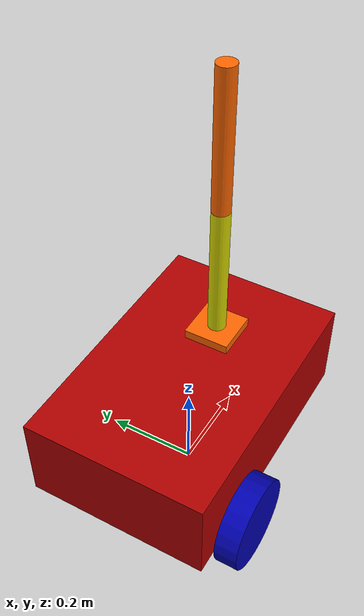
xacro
<?xml version="1.0"?>
<robot name="myBot" xmlns:xacro="http://www.ros.org/wiki/xacro" >
    <xacro:include filename="common_properties.xacro" />
    <xacro:include filename="mobile_base.xacro" />
    <xacro:include filename="camera.xacro" />
    <xacro:include filename="mobile_base_gazebo.xacro" />
    <xacro:include filename="robotic_arm.xacro" />
</robot>

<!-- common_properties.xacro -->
<robot xmlns:xacro="http://www.ros.org/wiki/xacro" >
    <material name="red">
        <color rgba="0.7 0 0 1" />
    </material>
    <material name="green">
        <color rgba="0 0.7 0 1" />
    </material>
    <material name="blue">
        <color rgba="0 0 0.7 1" />
    </material>
    <material name="orange">
        <color rgba="1 0.4 0 1" />
    </material>
    <material name="yellow">
        <color rgba="0.85 0.85 0 1" />
    </material>

    <xacro:macro name="box_inertia" params="l w h m xyz rpy" >
        <inertial>
            <origin xyz="${xyz}" rpy="${rpy}"/>
            <mass value="${m}" />
            <inertia ixx="${(m/12) * (h*h + l*l)}" ixy="0" ixz="0"
                     iyy="${(m/12) * (w*w + l*l)}" iyz="0"
                     izz="${(m/12) * (w*w + h*h)}" />
        </inertial>
    </xacro:macro>

    <xacro:macro name="cylinder_inertia" params="r l m xyz rpy" >
        <inertial>
            <origin xyz="${xyz}" rpy="${rpy}"/>
            <mass value="${m}" />
            <inertia ixx="${(m/12) * (3*r*r + l*l)}" ixy="0" ixz="0"
                     iyy="${(m/12) * (3*r*r + l*l)}" iyz="0"
                     izz="${(m/2) * (r*r)}" />
        </inertial>
    </xacro:macro>

    <xacro:macro name="sphere_inertia" params="r m xyz rpy" >
        <inertial>
            <origin xyz="${xyz}" rpy="${rpy}"/>
            <mass value="${m}" />
            <inertia ixx="${(2*m/5) * (r*r)}" ixy="0" ixz="0"
                     iyy="${(2*m/5) * (r*r)}" iyz="0"
                     izz="${(2*m/5) * (r*r)}" />
        </inertial>
    </xacro:macro>
</robot>

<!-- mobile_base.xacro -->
<robot xmlns:xacro="http://www.ros.org/wiki/xacro" >
    <xacro:property name="base_length" value="0.6" />
    <xacro:property name="base_width" value="0.4" />
    <xacro:property name="base_height" value="0.2" />
    <xacro:property name="wheel_radius" value="0.1" />
    <xacro:property name="wheel_length" value="0.05" />

    <link name="base_footprint" />
    <link name="base_link">
        <visual>
            <geometry>
                <box size="${base_length} ${base_width} ${base_height}" />
            </geometry>
            <origin xyz="0 0 ${base_height / 2}" rpy="0 0 0"/>
            <material name="red" />
        </visual>
        <collision>
            <geometry>
                <box size="${base_length} ${base_width} ${base_height}" />
            </geometry>
            <origin xyz="0 0 ${base_height / 2}" rpy="0 0 0"/>
        </collision>
        <xacro:box_inertia m="5.0" l="${2*base_length}" w="${2*base_width}" h="${2*base_height}"
                          xyz="0 0 ${base_height / 2}" rpy="0 0 0" />
    </link>

    <joint name="base_joint" type="fixed">
        <parent link="base_footprint" />
        <child link="base_link" />
        <origin xyz="0 0 ${wheel_radius}" rpy="0 0 0" />
        <axis xyz="1 0 0" />
    </joint>

    <xacro:macro name="wheel_link" params="prefix" >
        <link name="${prefix}_wheel_link">
            <visual>
                <geometry>
                    <cylinder radius="${wheel_radius}" length="${wheel_length}" />
                </geometry>
                <origin xyz="0 0 0" rpy="0 0 0"/>
                <material name="blue" />
            </visual>
            <collision>
                <geometry>
                    <cylinder radius="${wheel_radius}" length="${wheel_length}" />
                </geometry>
                <origin xyz="0 0 0" rpy="0 0 0"/>
            </collision>
            <xacro:cylinder_inertia m="1.0" l="${2*wheel_length}" r="${2*wheel_radius}"
                          xyz="0 0 0" rpy="0 0 0"/>
        </link>
    </xacro:macro>

    <xacro:wheel_link prefix="left" />
    <xacro:wheel_link prefix="right" />

    <joint name="base_left_wheel_joint" type="continuous">
        <parent link="base_link" />
        <child link="left_wheel_link" />
        <origin xyz="${-base_length / 4.0} ${base_width / 2 + wheel_radius / 4} 0" rpy="${pi / 2.0} 0 0"/>
        <axis xyz="0 0 1" />
    </joint>

    <joint name="base_right_wheel_joint" type="continuous">
        <parent link="base_link" />
        <child link="right_wheel_link" />
        <origin xyz="${-base_length / 4.0} ${-(base_width / 2 + wheel_radius / 4)} 0" rpy="${pi / 2.0} 0 0"/>
        <axis xyz="0 0 1" />
    </joint>

    <link name="castor_wheel_link">
        <visual>
            <geometry>
                <sphere radius="${wheel_radius / 2}" />
            </geometry>
            <origin xyz="0 0 0" rpy="0 0 0"/>
            <material name="blue" />
        </visual>
        <collision>
            <geometry>
                <sphere radius="${wheel_radius / 2}" />
            </geometry>
            <origin xyz="0 0 0" rpy="0 0 0"/>
        </collision>
        <xacro:sphere_inertia m="0.5" r="${wheel_radius / 2}" xyz="0 0 0" rpy="0 0 0"/>
    </link>

    <joint name="base_castor_wheel_joint" type="fixed">
        <parent link="base_link" />
        <child link="castor_wheel_link" />
        <origin xyz="${base_length / 3.0} 0 ${-wheel_radius / 2}" rpy="0 0 0"/>
        <axis xyz="1 0 0" />
    </joint>
</robot>

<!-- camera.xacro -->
<robot xmlns:xacro="http://www.ros.org/wiki/xacro" >
    <xacro:property name="camera_length" value="0.01" />
    <xacro:property name="camera_width" value="0.1" />
    <xacro:property name="camera_height" value="0.05" />
    <xacro:property name="camera_mass" value="0.1" />

    <link name="camera_link">
        <visual>
            <geometry>
                <box size="${camera_length} ${camera_width} ${camera_height}" />
            </geometry>
            <origin xyz="0 0 0" rpy="0 0 0"/>
            <material name="green" />
        </visual>
        <collision>
            <geometry>
                <box size="${camera_length} ${camera_width} ${camera_height}" />
            </geometry>
            <origin xyz="0 0 0" rpy="0 0 0"/>
        </collision>
        <xacro:box_inertia m="${camera_mass}" l="${camera_length}" w="${camera_width}"
        h="${camera_height}" xyz="0 0 0" rpy="0 0 0" />

    </link>

    <joint name="base_camera_link" type="fixed" >
        <parent link="base_link" />
        <child link="camera_link" />
        <origin xyz="${(base_length + camera_length) / 2} 0 ${base_height / 2}" rpy="0 0 0" />
    </joint>

    <gazebo reference="camera_link">
        <material>Gazebo/Green</material>
        <sensor name="camera_sensor" type="camera">
            <pose>0 0 0 0 0 0</pose>
            <visualize>true</visualize>
            <update_rate>20.0</update_rate>
            <plugin name="camera_controller" filename="libgazebo_ros_camera.so">
                <frame_name>camera_link</frame_name>
            </plugin>
        </sensor>
    </gazebo>
</robot>

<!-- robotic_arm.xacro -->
<robot xmlns:xacro="http://www.ros.org/wiki/xacro" >
    <xacro:property name="arm_base_length" value="0.1" />
    <xacro:property name="arm_base_width" value="0.1" />
    <xacro:property name="arm_base_height" value="0.02" />
    <xacro:property name="forearm_radius" value="0.02" />
    <xacro:property name="forearm_length" value="0.3" />
    <xacro:property name="hand_radius" value="0.02" />
    <xacro:property name="hand_length" value="0.3" />
    <link name="arm_base_link">
        <visual>
            <geometry>
                <box size="${arm_base_length} ${arm_base_width} ${arm_base_height}" />
            </geometry>
            <origin xyz="0 0 0" rpy="0 0 0" />
            <material name="orange" />
        </visual>
        <collision>
            <geometry>
                <box size="${arm_base_length} ${arm_base_width} ${arm_base_height}" />
            </geometry>
            <origin xyz="0 0 0" rpy="0 0 0" />
        </collision>
        <xacro:box_inertia m="0.5" l="${arm_base_length}" w="${arm_base_width}" h="${arm_base_height}"
                          xyz="0 0 0" rpy="0 0 0" />
    </link>

    <joint name="base_arm_base_joint" type="fixed">
        <parent link="base_link" />
        <child link="arm_base_link" />
        <origin xyz="${base_length / 5} 0 ${base_height + (arm_base_height / 2 )}" rpy="0 0 0" />
        <axis xyz="1 0 0" />
    </joint>

    <link name="forearm_link" >
        <visual>
            <geometry>
                <cylinder radius="${forearm_radius}" length="${forearm_length}" />
            </geometry>
            <origin xyz="0 0 ${forearm_length / 2}" rpy="0 0 0"/>
            <material name="yellow" />
        </visual>
        <collision>
            <geometry>
                <cylinder radius="${forearm_radius}" length="${forearm_length}" />
            </geometry>
            <origin xyz="0 0 ${forearm_length / 2}" rpy="0 0 0"/>
        </collision>
        <xacro:cylinder_inertia m="0.3" r="${forearm_radius}" l="${forearm_length}"
                                xyz="0 0 ${forearm_length / 2}" rpy="0 0 0"/>
    </link>

    <joint name="arm_base_forearm_joint" type="revolute">
        <parent link="arm_base_link" />
        <child link="forearm_link" />
        <origin xyz="0 0 ${arm_base_height / 2}" rpy="0 0 0" />
        <limit lower="0" upper="${pi / 2}" effort="100" velocity="100" />
        <axis xyz="0 1 0" />
        <dynamics friction="0.05" damping="0.1" />
    </joint>

    <link name="hand_link" >
        <visual>
            <geometry>
                <cylinder radius="${hand_radius}" length="${hand_length}" />
            </geometry>
            <origin xyz="0 0 ${forearm_length / 2}" rpy="0 0 0" />
            <material name="orange" />
        </visual>
        <collision>
            <geometry>
                <cylinder radius="${hand_radius}" length="${hand_length}" />
            </geometry>
            <origin xyz="0 0 ${hand_length / 2}" rpy="0 0 0" />
        </collision>
    <xacro:cylinder_inertia m="0.3" r="${hand_radius}" l="${hand_length}"
                            xyz="0 0 ${hand_length / 2}" rpy="0 0 0" />
    </link>

    <joint name="forearm_hand_joint" type="revolute">
        <parent link="forearm_link"/>
        <child link="hand_link"/>
        <origin xyz="0 0 ${forearm_length}" rpy="0 0 0"/>
        <axis xyz="0 1 0"/>
        <dynamics friction="0.05" damping="0.1" />
        <limit lower="0" upper="${pi / 2}" effort="100" velocity="100"/>
    </joint>
</robot>
